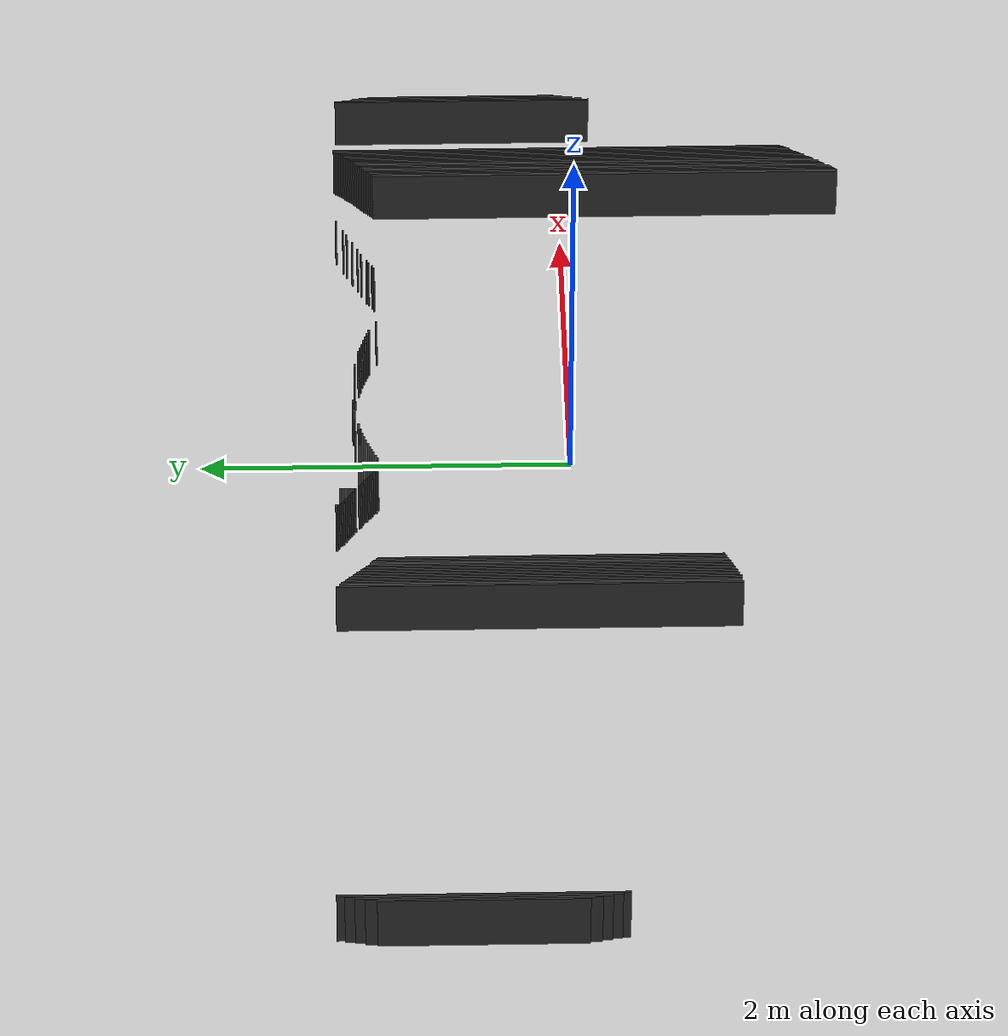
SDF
<sdf version="1.7">
 <world name="mapa_mundo">
  <model name="ground_plane">
   <static>true</static>
   <link name="link">
    <collision name="collision">
     <geometry><plane><normal>0 0 1</normal><size>10 10</size></plane></geometry>
     <surface><friction><ode><mu>100</mu><mu2>50</mu2></ode></friction></surface>
    </collision>
    <visual name="visual">
     <geometry><plane><normal>0 0 1</normal><size>10 10</size></plane></geometry>
     <material>
      <ambient>0.8 0.8 0.8 1</ambient>
      <diffuse>0.8 0.8 0.8 1</diffuse>
      <specular>0.8 0.8 0.8 1</specular>
     </material>
    </visual>
   </link>
  </model>
  <model name="wall_600">
   <static>true</static>
   <link name="link">
    <collision name="collision">
     <geometry><box><size>0.01 2.5500000000000003 0.3</size></box></geometry>
    </collision>
    <visual name="visual">
     <geometry><box><size>0.01 2.5500000000000003 0.3</size></box></geometry>
     <material><ambient>0.2 0.2 0.2 1</ambient><diffuse>0.2 0.2 0.2 1</diffuse></material>
    </visual>
    <pose>2.515 0.005 0.15 0 0 0</pose>
   </link>
  </model>
  <model name="wall_601">
   <static>true</static>
   <link name="link">
    <collision name="collision"><geometry><box><size>0.01 1.45 0.3</size></box></geometry></collision>
    <visual name="visual">
     <geometry><box><size>0.01 1.45 0.3</size></box></geometry>
     <material><ambient>0.2 0.2 0.2 1</ambient><diffuse>0.2 0.2 0.2 1</diffuse></material>
    </visual>
    <pose>-3.735 0.545 0.15 0 0 0</pose>
   </link>
  </model>
  <model name="wall_602">
   <static>true</static>
   <link name="link">
    <collision name="collision"><geometry><box><size>0.01 2.13 0.3</size></box></geometry></collision>
    <visual name="visual">
     <geometry><box><size>0.01 2.13 0.3</size></box></geometry>
     <material><ambient>0.2 0.2 0.2 1</ambient><diffuse>0.2 0.2 0.2 1</diffuse></material>
    </visual>
    <pose>-1.365 0.20500000000000002 0.15 0 0 0</pose>
   </link>
  </model>
  <model name="wall_603">
   <static>true</static>
   <link name="link">
    <collision name="collision"><geometry><box><size>0.02 0.01 0.3</size></box></geometry></collision>
    <visual name="visual">
     <geometry><box><size>0.02 0.01 0.3</size></box></geometry>
     <material><ambient>0.2 0.2 0.2 1</ambient><diffuse>0.2 0.2 0.2 1</diffuse></material>
    </visual>
    <pose>-0.7000000000000001 1.2650000000000001 0.15 0 0 0</pose>
   </link>
  </model>
  <model name="wall_604">
   <static>true</static>
   <link name="link">
    <collision name="collision"><geometry><box><size>0.01 0.01 0.3</size></box></geometry></collision>
    <visual name="visual">
     <geometry><box><size>0.01 0.01 0.3</size></box></geometry>
     <material><ambient>0.2 0.2 0.2 1</ambient><diffuse>0.2 0.2 0.2 1</diffuse></material>
    </visual>
    <pose>1.835 1.2650000000000001 0.15 0 0 0</pose>
   </link>
  </model>
  <model name="wall_605">
   <static>true</static>
   <link name="link">
    <collision name="collision"><geometry><box><size>0.01 2.56 0.3</size></box></geometry></collision>
    <visual name="visual">
     <geometry><box><size>0.01 2.56 0.3</size></box></geometry>
     <material><ambient>0.2 0.2 0.2 1</ambient><diffuse>0.2 0.2 0.2 1</diffuse></material>
    </visual>
    <pose>2.505 -0.01 0.15 0 0 0</pose>
   </link>
  </model>
  <model name="wall_606">
   <static>true</static>
   <link name="link">
    <collision name="collision"><geometry><box><size>0.01 1.46 0.3</size></box></geometry></collision>
    <visual name="visual">
     <geometry><box><size>0.01 1.46 0.3</size></box></geometry>
     <material><ambient>0.2 0.2 0.2 1</ambient><diffuse>0.2 0.2 0.2 1</diffuse></material>
    </visual>
    <pose>2.995 0.54 0.15 0 0 0</pose>
   </link>
  </model>
  <model name="wall_607">
   <static>true</static>
   <link name="link">
    <collision name="collision"><geometry><box><size>0.01 0.01 0.3</size></box></geometry></collision>
    <visual name="visual">
     <geometry><box><size>0.01 0.01 0.3</size></box></geometry>
     <material><ambient>0.2 0.2 0.2 1</ambient><diffuse>0.2 0.2 0.2 1</diffuse></material>
    </visual>
    <pose>-0.6950000000000001 1.2550000000000001 0.15 0 0 0</pose>
   </link>
  </model>
  <model name="wall_608">
   <static>true</static>
   <link name="link">
    <collision name="collision"><geometry><box><size>0.01 2.56 0.3</size></box></geometry></collision>
    <visual name="visual">
     <geometry><box><size>0.01 2.56 0.3</size></box></geometry>
     <material><ambient>0.2 0.2 0.2 1</ambient><diffuse>0.2 0.2 0.2 1</diffuse></material>
    </visual>
    <pose>2.495 -0.02 0.15 0 0 0</pose>
   </link>
  </model>
  <model name="wall_609">
   <static>true</static>
   <link name="link">
    <collision name="collision"><geometry><box><size>0.02 2.1 0.3</size></box></geometry></collision>
    <visual name="visual">
     <geometry><box><size>0.02 2.1 0.3</size></box></geometry>
     <material><ambient>0.2 0.2 0.2 1</ambient><diffuse>0.2 0.2 0.2 1</diffuse></material>
    </visual>
    <pose>-1.35 0.2 0.15 0 0 0</pose>
   </link>
  </model>
  <model name="wall_610">
   <static>true</static>
   <link name="link">
    <collision name="collision"><geometry><box><size>0.13 0.01 0.3</size></box></geometry></collision>
    <visual name="visual">
     <geometry><box><size>0.13 0.01 0.3</size></box></geometry>
     <material><ambient>0.2 0.2 0.2 1</ambient><diffuse>0.2 0.2 0.2 1</diffuse></material>
    </visual>
    <pose>-0.615 1.245 0.15 0 0 0</pose>
   </link>
  </model>
  <model name="wall_611">
   <static>true</static>
   <link name="link">
    <collision name="collision"><geometry><box><size>0.01 2.57 0.3</size></box></geometry></collision>
    <visual name="visual">
     <geometry><box><size>0.01 2.57 0.3</size></box></geometry>
     <material><ambient>0.2 0.2 0.2 1</ambient><diffuse>0.2 0.2 0.2 1</diffuse></material>
    </visual>
    <pose>2.485 -0.035 0.15 0 0 0</pose>
   </link>
  </model>
  <model name="wall_612">
   <static>true</static>
   <link name="link">
    <collision name="collision"><geometry><box><size>0.01 2.09 0.3</size></box></geometry></collision>
    <visual name="visual">
     <geometry><box><size>0.01 2.09 0.3</size></box></geometry>
     <material><ambient>0.2 0.2 0.2 1</ambient><diffuse>0.2 0.2 0.2 1</diffuse></material>
    </visual>
    <pose>-1.335 0.195 0.15 0 0 0</pose>
   </link>
  </model>
  <model name="wall_613">
   <static>true</static>
   <link name="link">
    <collision name="collision"><geometry><box><size>0.12 0.01 0.3</size></box></geometry></collision>
    <visual name="visual">
     <geometry><box><size>0.12 0.01 0.3</size></box></geometry>
     <material><ambient>0.2 0.2 0.2 1</ambient><diffuse>0.2 0.2 0.2 1</diffuse></material>
    </visual>
    <pose>-0.61 1.235 0.15 0 0 0</pose>
   </link>
  </model>
  <model name="wall_614">
   <static>true</static>
   <link name="link">
    <collision name="collision"><geometry><box><size>0.01 2.57 0.3</size></box></geometry></collision>
    <visual name="visual">
     <geometry><box><size>0.01 2.57 0.3</size></box></geometry>
     <material><ambient>0.2 0.2 0.2 1</ambient><diffuse>0.2 0.2 0.2 1</diffuse></material>
    </visual>
    <pose>2.475 -0.045 0.15 0 0 0</pose>
   </link>
  </model>
  <model name="wall_615">
   <static>true</static>
   <link name="link">
    <collision name="collision"><geometry><box><size>0.01 1.37 0.3</size></box></geometry></collision>
    <visual name="visual">
     <geometry><box><size>0.01 1.37 0.3</size></box></geometry>
     <material><ambient>0.2 0.2 0.2 1</ambient><diffuse>0.2 0.2 0.2 1</diffuse></material>
    </visual>
    <pose>-3.745 0.545 0.15 0 0 0</pose>
   </link>
  </model>
  <model name="wall_616">
   <static>true</static>
   <link name="link">
    <collision name="collision"><geometry><box><size>0.01 2.08 0.3</size></box></geometry></collision>
    <visual name="visual">
     <geometry><box><size>0.01 2.08 0.3</size></box></geometry>
     <material><ambient>0.2 0.2 0.2 1</ambient><diffuse>0.2 0.2 0.2 1</diffuse></material>
    </visual>
    <pose>-1.325 0.19 0.15 0 0 0</pose>
   </link>
  </model>
  <model name="wall_617">
   <static>true</static>
   <link name="link">
    <collision name="collision"><geometry><box><size>0.11 0.01 0.3</size></box></geometry></collision>
    <visual name="visual">
     <geometry><box><size>0.11 0.01 0.3</size></box></geometry>
     <material><ambient>0.2 0.2 0.2 1</ambient><diffuse>0.2 0.2 0.2 1</diffuse></material>
    </visual>
    <pose>-0.605 1.225 0.15 0 0 0</pose>
   </link>
  </model>
  <model name="wall_618">
   <static>true</static>
   <link name="link">
    <collision name="collision"><geometry><box><size>0.01 0.01 0.3</size></box></geometry></collision>
    <visual name="visual">
     <geometry><box><size>0.01 0.01 0.3</size></box></geometry>
     <material><ambient>0.2 0.2 0.2 1</ambient><diffuse>0.2 0.2 0.2 1</diffuse></material>
    </visual>
    <pose>1.745 1.225 0.15 0 0 0</pose>
   </link>
  </model>
  <model name="wall_619">
   <static>true</static>
   <link name="link">
    <collision name="collision"><geometry><box><size>0.01 2.57 0.3</size></box></geometry></collision>
    <visual name="visual">
     <geometry><box><size>0.01 2.57 0.3</size></box></geometry>
     <material><ambient>0.2 0.2 0.2 1</ambient><diffuse>0.2 0.2 0.2 1</diffuse></material>
    </visual>
    <pose>2.465 -0.055 0.15 0 0 0</pose>
   </link>
  </model>
  <model name="wall_620">
   <static>true</static>
   <link name="link">
    <collision name="collision">
     <geometry><box><size>0.01 1.3800000000000001 0.3</size></box></geometry>
    </collision>
    <visual name="visual">
     <geometry><box><size>0.01 1.3800000000000001 0.3</size></box></geometry>
     <material><ambient>0.2 0.2 0.2 1</ambient><diffuse>0.2 0.2 0.2 1</diffuse></material>
    </visual>
    <pose>3.005 0.54 0.15 0 0 0</pose>
   </link>
  </model>
  <model name="wall_621">
   <static>true</static>
   <link name="link">
    <collision name="collision"><geometry><box><size>0.01 2.07 0.3</size></box></geometry></collision>
    <visual name="visual">
     <geometry><box><size>0.01 2.07 0.3</size></box></geometry>
     <material><ambient>0.2 0.2 0.2 1</ambient><diffuse>0.2 0.2 0.2 1</diffuse></material>
    </visual>
    <pose>-1.315 0.185 0.15 0 0 0</pose>
   </link>
  </model>
  <model name="wall_622">
   <static>true</static>
   <link name="link">
    <collision name="collision"><geometry><box><size>0.09 0.01 0.3</size></box></geometry></collision>
    <visual name="visual">
     <geometry><box><size>0.09 0.01 0.3</size></box></geometry>
     <material><ambient>0.2 0.2 0.2 1</ambient><diffuse>0.2 0.2 0.2 1</diffuse></material>
    </visual>
    <pose>-0.595 1.215 0.15 0 0 0</pose>
   </link>
  </model>
  <model name="wall_623">
   <static>true</static>
   <link name="link">
    <collision name="collision"><geometry><box><size>0.01 2.58 0.3</size></box></geometry></collision>
    <visual name="visual">
     <geometry><box><size>0.01 2.58 0.3</size></box></geometry>
     <material><ambient>0.2 0.2 0.2 1</ambient><diffuse>0.2 0.2 0.2 1</diffuse></material>
    </visual>
    <pose>2.455 -0.07 0.15 0 0 0</pose>
   </link>
  </model>
  <model name="wall_624">
   <static>true</static>
   <link name="link">
    <collision name="collision"><geometry><box><size>0.01 2.05 0.3</size></box></geometry></collision>
    <visual name="visual">
     <geometry><box><size>0.01 2.05 0.3</size></box></geometry>
     <material><ambient>0.2 0.2 0.2 1</ambient><diffuse>0.2 0.2 0.2 1</diffuse></material>
    </visual>
    <pose>-1.305 0.185 0.15 0 0 0</pose>
   </link>
  </model>
  <model name="wall_625">
   <static>true</static>
   <link name="link">
    <collision name="collision"><geometry><box><size>0.07 0.01 0.3</size></box></geometry></collision>
    <visual name="visual">
     <geometry><box><size>0.07 0.01 0.3</size></box></geometry>
     <material><ambient>0.2 0.2 0.2 1</ambient><diffuse>0.2 0.2 0.2 1</diffuse></material>
    </visual>
    <pose>-0.585 1.205 0.15 0 0 0</pose>
   </link>
  </model>
  <model name="wall_626">
   <static>true</static>
   <link name="link">
    <collision name="collision"><geometry><box><size>0.01 0.01 0.3</size></box></geometry></collision>
    <visual name="visual">
     <geometry><box><size>0.01 0.01 0.3</size></box></geometry>
     <material><ambient>0.2 0.2 0.2 1</ambient><diffuse>0.2 0.2 0.2 1</diffuse></material>
    </visual>
    <pose>1.705 1.205 0.15 0 0 0</pose>
   </link>
  </model>
  <model name="wall_627">
   <static>true</static>
   <link name="link">
    <collision name="collision"><geometry><box><size>0.01 2.58 0.3</size></box></geometry></collision>
    <visual name="visual">
     <geometry><box><size>0.01 2.58 0.3</size></box></geometry>
     <material><ambient>0.2 0.2 0.2 1</ambient><diffuse>0.2 0.2 0.2 1</diffuse></material>
    </visual>
    <pose>2.445 -0.08 0.15 0 0 0</pose>
   </link>
  </model>
  <model name="wall_628">
   <static>true</static>
   <link name="link">
    <collision name="collision"><geometry><box><size>0.01 2.04 0.3</size></box></geometry></collision>
    <visual name="visual">
     <geometry><box><size>0.01 2.04 0.3</size></box></geometry>
     <material><ambient>0.2 0.2 0.2 1</ambient><diffuse>0.2 0.2 0.2 1</diffuse></material>
    </visual>
    <pose>-1.295 0.18 0.15 0 0 0</pose>
   </link>
  </model>
  <model name="wall_629">
   <static>true</static>
   <link name="link">
    <collision name="collision"><geometry><box><size>0.06 0.01 0.3</size></box></geometry></collision>
    <visual name="visual">
     <geometry><box><size>0.06 0.01 0.3</size></box></geometry>
     <material><ambient>0.2 0.2 0.2 1</ambient><diffuse>0.2 0.2 0.2 1</diffuse></material>
    </visual>
    <pose>-0.58 1.195 0.15 0 0 0</pose>
   </link>
  </model>
  <model name="wall_630">
   <static>true</static>
   <link name="link">
    <collision name="collision"><geometry><box><size>0.01 2.58 0.3</size></box></geometry></collision>
    <visual name="visual">
     <geometry><box><size>0.01 2.58 0.3</size></box></geometry>
     <material><ambient>0.2 0.2 0.2 1</ambient><diffuse>0.2 0.2 0.2 1</diffuse></material>
    </visual>
    <pose>2.435 -0.09 0.15 0 0 0</pose>
   </link>
  </model>
  <model name="wall_631">
   <static>true</static>
   <link name="link">
    <collision name="collision"><geometry><box><size>0.01 2.02 0.3</size></box></geometry></collision>
    <visual name="visual">
     <geometry><box><size>0.01 2.02 0.3</size></box></geometry>
     <material><ambient>0.2 0.2 0.2 1</ambient><diffuse>0.2 0.2 0.2 1</diffuse></material>
    </visual>
    <pose>-1.285 0.18 0.15 0 0 0</pose>
   </link>
  </model>
  <model name="wall_632">
   <static>true</static>
   <link name="link">
    <collision name="collision"><geometry><box><size>0.04 0.01 0.3</size></box></geometry></collision>
    <visual name="visual">
     <geometry><box><size>0.04 0.01 0.3</size></box></geometry>
     <material><ambient>0.2 0.2 0.2 1</ambient><diffuse>0.2 0.2 0.2 1</diffuse></material>
    </visual>
    <pose>-0.5700000000000001 1.185 0.15 0 0 0</pose>
   </link>
  </model>
  <model name="wall_633">
   <static>true</static>
   <link name="link">
    <collision name="collision"><geometry><box><size>0.01 2.59 0.3</size></box></geometry></collision>
    <visual name="visual">
     <geometry><box><size>0.01 2.59 0.3</size></box></geometry>
     <material><ambient>0.2 0.2 0.2 1</ambient><diffuse>0.2 0.2 0.2 1</diffuse></material>
    </visual>
    <pose>2.4250000000000003 -0.105 0.15 0 0 0</pose>
   </link>
  </model>
  <model name="wall_634">
   <static>true</static>
   <link name="link">
    <collision name="collision"><geometry><box><size>0.01 1.27 0.3</size></box></geometry></collision>
    <visual name="visual">
     <geometry><box><size>0.01 1.27 0.3</size></box></geometry>
     <material><ambient>0.2 0.2 0.2 1</ambient><diffuse>0.2 0.2 0.2 1</diffuse></material>
    </visual>
    <pose>-3.755 0.545 0.15 0 0 0</pose>
   </link>
  </model>
  <model name="wall_635">
   <static>true</static>
   <link name="link">
    <collision name="collision">
     <geometry><box><size>0.01 2.0100000000000002 0.3</size></box></geometry>
    </collision>
    <visual name="visual">
     <geometry><box><size>0.01 2.0100000000000002 0.3</size></box></geometry>
     <material><ambient>0.2 0.2 0.2 1</ambient><diffuse>0.2 0.2 0.2 1</diffuse></material>
    </visual>
    <pose>-1.2750000000000001 0.17500000000000002 0.15 0 0 0</pose>
   </link>
  </model>
  <model name="wall_636">
   <static>true</static>
   <link name="link">
    <collision name="collision"><geometry><box><size>0.03 0.01 0.3</size></box></geometry></collision>
    <visual name="visual">
     <geometry><box><size>0.03 0.01 0.3</size></box></geometry>
     <material><ambient>0.2 0.2 0.2 1</ambient><diffuse>0.2 0.2 0.2 1</diffuse></material>
    </visual>
    <pose>-0.5650000000000001 1.175 0.15 0 0 0</pose>
   </link>
  </model>
  <model name="wall_637">
   <static>true</static>
   <link name="link">
    <collision name="collision"><geometry><box><size>0.02 0.01 0.3</size></box></geometry></collision>
    <visual name="visual">
     <geometry><box><size>0.02 0.01 0.3</size></box></geometry>
     <material><ambient>0.2 0.2 0.2 1</ambient><diffuse>0.2 0.2 0.2 1</diffuse></material>
    </visual>
    <pose>0.2 1.175 0.15 0 0 0</pose>
   </link>
  </model>
  <model name="wall_638">
   <static>true</static>
   <link name="link">
    <collision name="collision"><geometry><box><size>0.01 0.01 0.3</size></box></geometry></collision>
    <visual name="visual">
     <geometry><box><size>0.01 0.01 0.3</size></box></geometry>
     <material><ambient>0.2 0.2 0.2 1</ambient><diffuse>0.2 0.2 0.2 1</diffuse></material>
    </visual>
    <pose>1.635 1.175 0.15 0 0 0</pose>
   </link>
  </model>
  <model name="wall_639">
   <static>true</static>
   <link name="link">
    <collision name="collision"><geometry><box><size>0.01 2.59 0.3</size></box></geometry></collision>
    <visual name="visual">
     <geometry><box><size>0.01 2.59 0.3</size></box></geometry>
     <material><ambient>0.2 0.2 0.2 1</ambient><diffuse>0.2 0.2 0.2 1</diffuse></material>
    </visual>
    <pose>2.415 -0.115 0.15 0 0 0</pose>
   </link>
  </model>
  <model name="wall_640">
   <static>true</static>
   <link name="link">
    <collision name="collision"><geometry><box><size>0.01 1.28 0.3</size></box></geometry></collision>
    <visual name="visual">
     <geometry><box><size>0.01 1.28 0.3</size></box></geometry>
     <material><ambient>0.2 0.2 0.2 1</ambient><diffuse>0.2 0.2 0.2 1</diffuse></material>
    </visual>
    <pose>3.015 0.54 0.15 0 0 0</pose>
   </link>
  </model>
  <model name="wall_641">
   <static>true</static>
   <link name="link">
    <collision name="collision"><geometry><box><size>0.01 2.0 0.3</size></box></geometry></collision>
    <visual name="visual">
     <geometry><box><size>0.01 2.0 0.3</size></box></geometry>
     <material><ambient>0.2 0.2 0.2 1</ambient><diffuse>0.2 0.2 0.2 1</diffuse></material>
    </visual>
    <pose>-1.2650000000000001 0.17 0.15 0 0 0</pose>
   </link>
  </model>
  <model name="wall_642">
   <static>true</static>
   <link name="link">
    <collision name="collision"><geometry><box><size>0.01 0.01 0.3</size></box></geometry></collision>
    <visual name="visual">
     <geometry><box><size>0.01 0.01 0.3</size></box></geometry>
     <material><ambient>0.2 0.2 0.2 1</ambient><diffuse>0.2 0.2 0.2 1</diffuse></material>
    </visual>
    <pose>-0.555 1.165 0.15 0 0 0</pose>
   </link>
  </model>
  <model name="wall_643">
   <static>true</static>
   <link name="link">
    <collision name="collision"><geometry><box><size>0.07 0.01 0.3</size></box></geometry></collision>
    <visual name="visual">
     <geometry><box><size>0.07 0.01 0.3</size></box></geometry>
     <material><ambient>0.2 0.2 0.2 1</ambient><diffuse>0.2 0.2 0.2 1</diffuse></material>
    </visual>
    <pose>0.075 1.165 0.15 0 0 0</pose>
   </link>
  </model>
  <model name="wall_644">
   <static>true</static>
   <link name="link">
    <collision name="collision"><geometry><box><size>0.03 0.01 0.3</size></box></geometry></collision>
    <visual name="visual">
     <geometry><box><size>0.03 0.01 0.3</size></box></geometry>
     <material><ambient>0.2 0.2 0.2 1</ambient><diffuse>0.2 0.2 0.2 1</diffuse></material>
    </visual>
    <pose>0.515 1.165 0.15 0 0 0</pose>
   </link>
  </model>
  <model name="wall_645">
   <static>true</static>
   <link name="link">
    <collision name="collision"><geometry><box><size>0.01 2.6 0.3</size></box></geometry></collision>
    <visual name="visual">
     <geometry><box><size>0.01 2.6 0.3</size></box></geometry>
     <material><ambient>0.2 0.2 0.2 1</ambient><diffuse>0.2 0.2 0.2 1</diffuse></material>
    </visual>
    <pose>2.4050000000000002 -0.13 0.15 0 0 0</pose>
   </link>
  </model>
  <model name="wall_646">
   <static>true</static>
   <link name="link">
    <collision name="collision"><geometry><box><size>0.01 1.98 0.3</size></box></geometry></collision>
    <visual name="visual">
     <geometry><box><size>0.01 1.98 0.3</size></box></geometry>
     <material><ambient>0.2 0.2 0.2 1</ambient><diffuse>0.2 0.2 0.2 1</diffuse></material>
    </visual>
    <pose>-1.2550000000000001 0.17 0.15 0 0 0</pose>
   </link>
  </model>
  <model name="wall_647">
   <static>true</static>
   <link name="link">
    <collision name="collision"><geometry><box><size>0.01 2.6 0.3</size></box></geometry></collision>
    <visual name="visual">
     <geometry><box><size>0.01 2.6 0.3</size></box></geometry>
     <material><ambient>0.2 0.2 0.2 1</ambient><diffuse>0.2 0.2 0.2 1</diffuse></material>
    </visual>
    <pose>2.395 -0.14 0.15 0 0 0</pose>
   </link>
  </model>
  <model name="wall_648">
   <static>true</static>
   <link name="link">
    <collision name="collision"><geometry><box><size>0.01 1.97 0.3</size></box></geometry></collision>
    <visual name="visual">
     <geometry><box><size>0.01 1.97 0.3</size></box></geometry>
     <material><ambient>0.2 0.2 0.2 1</ambient><diffuse>0.2 0.2 0.2 1</diffuse></material>
    </visual>
    <pose>-1.245 0.165 0.15 0 0 0</pose>
   </link>
  </model>
  <model name="wall_649">
   <static>true</static>
   <link name="link">
    <collision name="collision">
     <geometry><box><size>0.35000000000000003 0.01 0.3</size></box></geometry>
    </collision>
    <visual name="visual">
     <geometry><box><size>0.35000000000000003 0.01 0.3</size></box></geometry>
     <material><ambient>0.2 0.2 0.2 1</ambient><diffuse>0.2 0.2 0.2 1</diffuse></material>
    </visual>
    <pose>-0.355 1.145 0.15 0 0 0</pose>
   </link>
  </model>
  <model name="wall_650">
   <static>true</static>
   <link name="link">
    <collision name="collision"><geometry><box><size>0.05 0.01 0.3</size></box></geometry></collision>
    <visual name="visual">
     <geometry><box><size>0.05 0.01 0.3</size></box></geometry>
     <material><ambient>0.2 0.2 0.2 1</ambient><diffuse>0.2 0.2 0.2 1</diffuse></material>
    </visual>
    <pose>-0.025 1.145 0.15 0 0 0</pose>
   </link>
  </model>
  <model name="wall_651">
   <static>true</static>
   <link name="link">
    <collision name="collision"><geometry><box><size>0.03 0.01 0.3</size></box></geometry></collision>
    <visual name="visual">
     <geometry><box><size>0.03 0.01 0.3</size></box></geometry>
     <material><ambient>0.2 0.2 0.2 1</ambient><diffuse>0.2 0.2 0.2 1</diffuse></material>
    </visual>
    <pose>0.625 1.145 0.15 0 0 0</pose>
   </link>
  </model>
  <model name="wall_652">
   <static>true</static>
   <link name="link">
    <collision name="collision"><geometry><box><size>0.01 0.01 0.3</size></box></geometry></collision>
    <visual name="visual">
     <geometry><box><size>0.01 0.01 0.3</size></box></geometry>
     <material><ambient>0.2 0.2 0.2 1</ambient><diffuse>0.2 0.2 0.2 1</diffuse></material>
    </visual>
    <pose>1.575 1.145 0.15 0 0 0</pose>
   </link>
  </model>
  <model name="wall_653">
   <static>true</static>
   <link name="link">
    <collision name="collision"><geometry><box><size>0.02 2.6 0.3</size></box></geometry></collision>
    <visual name="visual">
     <geometry><box><size>0.02 2.6 0.3</size></box></geometry>
     <material><ambient>0.2 0.2 0.2 1</ambient><diffuse>0.2 0.2 0.2 1</diffuse></material>
    </visual>
    <pose>2.38 -0.15 0.15 0 0 0</pose>
   </link>
  </model>
  <model name="wall_654">
   <static>true</static>
   <link name="link">
    <collision name="collision"><geometry><box><size>0.01 1.95 0.3</size></box></geometry></collision>
    <visual name="visual">
     <geometry><box><size>0.01 1.95 0.3</size></box></geometry>
     <material><ambient>0.2 0.2 0.2 1</ambient><diffuse>0.2 0.2 0.2 1</diffuse></material>
    </visual>
    <pose>-1.235 0.165 0.15 0 0 0</pose>
   </link>
  </model>
  <model name="wall_655">
   <static>true</static>
   <link name="link">
    <collision name="collision"><geometry><box><size>0.34 0.01 0.3</size></box></geometry></collision>
    <visual name="visual">
     <geometry><box><size>0.34 0.01 0.3</size></box></geometry>
     <material><ambient>0.2 0.2 0.2 1</ambient><diffuse>0.2 0.2 0.2 1</diffuse></material>
    </visual>
    <pose>-0.35000000000000003 1.135 0.15 0 0 0</pose>
   </link>
  </model>
  <model name="wall_656">
   <static>true</static>
   <link name="link">
    <collision name="collision"><geometry><box><size>0.01 0.01 0.3</size></box></geometry></collision>
    <visual name="visual">
     <geometry><box><size>0.01 0.01 0.3</size></box></geometry>
     <material><ambient>0.2 0.2 0.2 1</ambient><diffuse>0.2 0.2 0.2 1</diffuse></material>
    </visual>
    <pose>-0.045 1.135 0.15 0 0 0</pose>
   </link>
  </model>
  <model name="wall_657">
   <static>true</static>
   <link name="link">
    <collision name="collision"><geometry><box><size>0.02 0.01 0.3</size></box></geometry></collision>
    <visual name="visual">
     <geometry><box><size>0.02 0.01 0.3</size></box></geometry>
     <material><ambient>0.2 0.2 0.2 1</ambient><diffuse>0.2 0.2 0.2 1</diffuse></material>
    </visual>
    <pose>0.66 1.135 0.15 0 0 0</pose>
   </link>
  </model>
  <model name="wall_658">
   <static>true</static>
   <link name="link">
    <collision name="collision"><geometry><box><size>0.01 2.62 0.3</size></box></geometry></collision>
    <visual name="visual">
     <geometry><box><size>0.01 2.62 0.3</size></box></geometry>
     <material><ambient>0.2 0.2 0.2 1</ambient><diffuse>0.2 0.2 0.2 1</diffuse></material>
    </visual>
    <pose>2.365 -0.17 0.15 0 0 0</pose>
   </link>
  </model>
  <model name="wall_659">
   <static>true</static>
   <link name="link">
    <collision name="collision"><geometry><box><size>0.01 1.17 0.3</size></box></geometry></collision>
    <visual name="visual">
     <geometry><box><size>0.01 1.17 0.3</size></box></geometry>
     <material><ambient>0.2 0.2 0.2 1</ambient><diffuse>0.2 0.2 0.2 1</diffuse></material>
    </visual>
    <pose>-3.765 0.545 0.15 0 0 0</pose>
   </link>
  </model>
  <model name="wall_660">
   <static>true</static>
   <link name="link">
    <collision name="collision"><geometry><box><size>0.01 1.94 0.3</size></box></geometry></collision>
    <visual name="visual">
     <geometry><box><size>0.01 1.94 0.3</size></box></geometry>
     <material><ambient>0.2 0.2 0.2 1</ambient><diffuse>0.2 0.2 0.2 1</diffuse></material>
    </visual>
    <pose>-1.225 0.16 0.15 0 0 0</pose>
   </link>
  </model>
  <model name="wall_661">
   <static>true</static>
   <link name="link">
    <collision name="collision"><geometry><box><size>0.42 0.01 0.3</size></box></geometry></collision>
    <visual name="visual">
     <geometry><box><size>0.42 0.01 0.3</size></box></geometry>
     <material><ambient>0.2 0.2 0.2 1</ambient><diffuse>0.2 0.2 0.2 1</diffuse></material>
    </visual>
    <pose>-0.29 1.125 0.15 0 0 0</pose>
   </link>
  </model>
  <model name="wall_662">
   <static>true</static>
   <link name="link">
    <collision name="collision"><geometry><box><size>0.01 0.01 0.3</size></box></geometry></collision>
    <visual name="visual">
     <geometry><box><size>0.01 0.01 0.3</size></box></geometry>
     <material><ambient>0.2 0.2 0.2 1</ambient><diffuse>0.2 0.2 0.2 1</diffuse></material>
    </visual>
    <pose>0.6950000000000001 1.125 0.15 0 0 0</pose>
   </link>
  </model>
  <model name="wall_663">
   <static>true</static>
   <link name="link">
    <collision name="collision"><geometry><box><size>0.01 0.01 0.3</size></box></geometry></collision>
    <visual name="visual">
     <geometry><box><size>0.01 0.01 0.3</size></box></geometry>
     <material><ambient>0.2 0.2 0.2 1</ambient><diffuse>0.2 0.2 0.2 1</diffuse></material>
    </visual>
    <pose>1.5250000000000001 1.125 0.15 0 0 0</pose>
   </link>
  </model>
  <model name="wall_664">
   <static>true</static>
   <link name="link">
    <collision name="collision"><geometry><box><size>0.01 2.62 0.3</size></box></geometry></collision>
    <visual name="visual">
     <geometry><box><size>0.01 2.62 0.3</size></box></geometry>
     <material><ambient>0.2 0.2 0.2 1</ambient><diffuse>0.2 0.2 0.2 1</diffuse></material>
    </visual>
    <pose>2.355 -0.18 0.15 0 0 0</pose>
   </link>
  </model>
  <model name="wall_665">
   <static>true</static>
   <link name="link">
    <collision name="collision"><geometry><box><size>0.01 1.17 0.3</size></box></geometry></collision>
    <visual name="visual">
     <geometry><box><size>0.01 1.17 0.3</size></box></geometry>
     <material><ambient>0.2 0.2 0.2 1</ambient><diffuse>0.2 0.2 0.2 1</diffuse></material>
    </visual>
    <pose>3.025 0.545 0.15 0 0 0</pose>
   </link>
  </model>
  <model name="wall_666">
   <static>true</static>
   <link name="link">
    <collision name="collision"><geometry><box><size>0.01 1.93 0.3</size></box></geometry></collision>
    <visual name="visual">
     <geometry><box><size>0.01 1.93 0.3</size></box></geometry>
     <material><ambient>0.2 0.2 0.2 1</ambient><diffuse>0.2 0.2 0.2 1</diffuse></material>
    </visual>
    <pose>-1.215 0.155 0.15 0 0 0</pose>
   </link>
  </model>
  <model name="wall_667">
   <static>true</static>
   <link name="link">
    <collision name="collision"><geometry><box><size>0.37 0.01 0.3</size></box></geometry></collision>
    <visual name="visual">
     <geometry><box><size>0.37 0.01 0.3</size></box></geometry>
     <material><ambient>0.2 0.2 0.2 1</ambient><diffuse>0.2 0.2 0.2 1</diffuse></material>
    </visual>
    <pose>-0.295 1.115 0.15 0 0 0</pose>
   </link>
  </model>
  <model name="wall_668">
   <static>true</static>
   <link name="link">
    <collision name="collision"><geometry><box><size>0.02 0.01 0.3</size></box></geometry></collision>
    <visual name="visual">
     <geometry><box><size>0.02 0.01 0.3</size></box></geometry>
     <material><ambient>0.2 0.2 0.2 1</ambient><diffuse>0.2 0.2 0.2 1</diffuse></material>
    </visual>
    <pose>0.73 1.115 0.15 0 0 0</pose>
   </link>
  </model>
  <model name="wall_669">
   <static>true</static>
   <link name="link">
    <collision name="collision"><geometry><box><size>0.01 2.62 0.3</size></box></geometry></collision>
    <visual name="visual">
     <geometry><box><size>0.01 2.62 0.3</size></box></geometry>
     <material><ambient>0.2 0.2 0.2 1</ambient><diffuse>0.2 0.2 0.2 1</diffuse></material>
    </visual>
    <pose>2.345 -0.19 0.15 0 0 0</pose>
   </link>
  </model>
  <model name="wall_670">
   <static>true</static>
   <link name="link">
    <collision name="collision">
     <geometry><box><size>0.01 1.9100000000000001 0.3</size></box></geometry>
    </collision>
    <visual name="visual">
     <geometry><box><size>0.01 1.9100000000000001 0.3</size></box></geometry>
     <material><ambient>0.2 0.2 0.2 1</ambient><diffuse>0.2 0.2 0.2 1</diffuse></material>
    </visual>
    <pose>-1.205 0.155 0.15 0 0 0</pose>
   </link>
  </model>
  <model name="wall_671">
   <static>true</static>
   <link name="link">
    <collision name="collision"><geometry><box><size>0.33 0.01 0.3</size></box></geometry></collision>
    <visual name="visual">
     <geometry><box><size>0.33 0.01 0.3</size></box></geometry>
     <material><ambient>0.2 0.2 0.2 1</ambient><diffuse>0.2 0.2 0.2 1</diffuse></material>
    </visual>
    <pose>-0.305 1.105 0.15 0 0 0</pose>
   </link>
  </model>
  <model name="wall_672">
   <static>true</static>
   <link name="link">
    <collision name="collision"><geometry><box><size>0.02 0.01 0.3</size></box></geometry></collision>
    <visual name="visual">
     <geometry><box><size>0.02 0.01 0.3</size></box></geometry>
     <material><ambient>0.2 0.2 0.2 1</ambient><diffuse>0.2 0.2 0.2 1</diffuse></material>
    </visual>
    <pose>0.76 1.105 0.15 0 0 0</pose>
   </link>
  </model>
  <model name="wall_673">
   <static>true</static>
   <link name="link">
    <collision name="collision"><geometry><box><size>0.02 2.62 0.3</size></box></geometry></collision>
    <visual name="visual">
     <geometry><box><size>0.02 2.62 0.3</size></box></geometry>
     <material><ambient>0.2 0.2 0.2 1</ambient><diffuse>0.2 0.2 0.2 1</diffuse></material>
    </visual>
    <pose>2.33 -0.2 0.15 0 0 0</pose>
   </link>
  </model>
  <model name="wall_674">
   <static>true</static>
   <link name="link">
    <collision name="collision">
     <geometry><box><size>0.01 1.9000000000000001 0.3</size></box></geometry>
    </collision>
    <visual name="visual">
     <geometry><box><size>0.01 1.9000000000000001 0.3</size></box></geometry>
     <material><ambient>0.2 0.2 0.2 1</ambient><diffuse>0.2 0.2 0.2 1</diffuse></material>
    </visual>
    <pose>-1.195 0.15 0.15 0 0 0</pose>
   </link>
  </model>
  <model name="wall_675">
   <static>true</static>
   <link name="link">
    <collision name="collision"><geometry><box><size>0.28 0.01 0.3</size></box></geometry></collision>
    <visual name="visual">
     <geometry><box><size>0.28 0.01 0.3</size></box></geometry>
     <material><ambient>0.2 0.2 0.2 1</ambient><diffuse>0.2 0.2 0.2 1</diffuse></material>
    </visual>
    <pose>-0.31 1.095 0.15 0 0 0</pose>
   </link>
  </model>
  <model name="wall_676">
   <static>true</static>
   <link name="link">
    <collision name="collision"><geometry><box><size>0.02 0.01 0.3</size></box></geometry></collision>
    <visual name="visual">
     <geometry><box><size>0.02 0.01 0.3</size></box></geometry>
     <material><ambient>0.2 0.2 0.2 1</ambient><diffuse>0.2 0.2 0.2 1</diffuse></material>
    </visual>
    <pose>0.79 1.095 0.15 0 0 0</pose>
   </link>
  </model>
  <model name="wall_677">
   <static>true</static>
   <link name="link">
    <collision name="collision"><geometry><box><size>0.01 0.01 0.3</size></box></geometry></collision>
    <visual name="visual">
     <geometry><box><size>0.01 0.01 0.3</size></box></geometry>
     <material><ambient>0.2 0.2 0.2 1</ambient><diffuse>0.2 0.2 0.2 1</diffuse></material>
    </visual>
    <pose>1.465 1.095 0.15 0 0 0</pose>
   </link>
  </model>
  <model name="wall_678">
   <static>true</static>
   <link name="link">
    <collision name="collision"><geometry><box><size>0.01 2.64 0.3</size></box></geometry></collision>
    <visual name="visual">
     <geometry><box><size>0.01 2.64 0.3</size></box></geometry>
     <material><ambient>0.2 0.2 0.2 1</ambient><diffuse>0.2 0.2 0.2 1</diffuse></material>
    </visual>
    <pose>2.315 -0.22 0.15 0 0 0</pose>
   </link>
  </model>
  <model name="wall_679">
   <static>true</static>
   <link name="link">
    <collision name="collision">
     <geometry><box><size>0.02 1.8800000000000001 0.3</size></box></geometry>
    </collision>
    <visual name="visual">
     <geometry><box><size>0.02 1.8800000000000001 0.3</size></box></geometry>
     <material><ambient>0.2 0.2 0.2 1</ambient><diffuse>0.2 0.2 0.2 1</diffuse></material>
    </visual>
    <pose>-1.18 0.15 0.15 0 0 0</pose>
   </link>
  </model>
  <model name="wall_680">
   <static>true</static>
   <link name="link">
    <collision name="collision"><geometry><box><size>0.24 0.01 0.3</size></box></geometry></collision>
    <visual name="visual">
     <geometry><box><size>0.24 0.01 0.3</size></box></geometry>
     <material><ambient>0.2 0.2 0.2 1</ambient><diffuse>0.2 0.2 0.2 1</diffuse></material>
    </visual>
    <pose>-0.32 1.085 0.15 0 0 0</pose>
   </link>
  </model>
  <model name="wall_681">
   <static>true</static>
   <link name="link">
    <collision name="collision"><geometry><box><size>0.02 0.01 0.3</size></box></geometry></collision>
    <visual name="visual">
     <geometry><box><size>0.02 0.01 0.3</size></box></geometry>
     <material><ambient>0.2 0.2 0.2 1</ambient><diffuse>0.2 0.2 0.2 1</diffuse></material>
    </visual>
    <pose>0.8200000000000001 1.085 0.15 0 0 0</pose>
   </link>
  </model>
  <model name="wall_682">
   <static>true</static>
   <link name="link">
    <collision name="collision"><geometry><box><size>0.01 0.01 0.3</size></box></geometry></collision>
    <visual name="visual">
     <geometry><box><size>0.01 0.01 0.3</size></box></geometry>
     <material><ambient>0.2 0.2 0.2 1</ambient><diffuse>0.2 0.2 0.2 1</diffuse></material>
    </visual>
    <pose>1.445 1.085 0.15 0 0 0</pose>
   </link>
  </model>
  <model name="wall_683">
   <static>true</static>
   <link name="link">
    <collision name="collision"><geometry><box><size>0.01 2.64 0.3</size></box></geometry></collision>
    <visual name="visual">
     <geometry><box><size>0.01 2.64 0.3</size></box></geometry>
     <material><ambient>0.2 0.2 0.2 1</ambient><diffuse>0.2 0.2 0.2 1</diffuse></material>
    </visual>
    <pose>2.305 -0.23 0.15 0 0 0</pose>
   </link>
  </model>
  <model name="wall_684">
   <static>true</static>
   <link name="link">
    <collision name="collision"><geometry><box><size>0.01 1.86 0.3</size></box></geometry></collision>
    <visual name="visual">
     <geometry><box><size>0.01 1.86 0.3</size></box></geometry>
     <material><ambient>0.2 0.2 0.2 1</ambient><diffuse>0.2 0.2 0.2 1</diffuse></material>
    </visual>
    <pose>-1.165 0.15 0.15 0 0 0</pose>
   </link>
  </model>
  <model name="wall_685">
   <static>true</static>
   <link name="link">
    <collision name="collision"><geometry><box><size>0.21 0.01 0.3</size></box></geometry></collision>
    <visual name="visual">
     <geometry><box><size>0.21 0.01 0.3</size></box></geometry>
     <material><ambient>0.2 0.2 0.2 1</ambient><diffuse>0.2 0.2 0.2 1</diffuse></material>
    </visual>
    <pose>-0.325 1.075 0.15 0 0 0</pose>
   </link>
  </model>
  <model name="wall_686">
   <static>true</static>
   <link name="link">
    <collision name="collision"><geometry><box><size>0.01 2.64 0.3</size></box></geometry></collision>
    <visual name="visual">
     <geometry><box><size>0.01 2.64 0.3</size></box></geometry>
     <material><ambient>0.2 0.2 0.2 1</ambient><diffuse>0.2 0.2 0.2 1</diffuse></material>
    </visual>
    <pose>2.295 -0.24 0.15 0 0 0</pose>
   </link>
  </model>
  <model name="wall_687">
   <static>true</static>
   <link name="link">
    <collision name="collision"><geometry><box><size>0.01 1.07 0.3</size></box></geometry></collision>
    <visual name="visual">
     <geometry><box><size>0.01 1.07 0.3</size></box></geometry>
     <material><ambient>0.2 0.2 0.2 1</ambient><diffuse>0.2 0.2 0.2 1</diffuse></material>
    </visual>
    <pose>3.035 0.545 0.15 0 0 0</pose>
   </link>
  </model>
  <model name="wall_688">
   <static>true</static>
   <link name="link">
    <collision name="collision"><geometry><box><size>0.01 1.05 0.3</size></box></geometry></collision>
    <visual name="visual">
     <geometry><box><size>0.01 1.05 0.3</size></box></geometry>
     <material><ambient>0.2 0.2 0.2 1</ambient><diffuse>0.2 0.2 0.2 1</diffuse></material>
    </visual>
    <pose>-3.775 0.545 0.15 0 0 0</pose>
   </link>
  </model>
  <model name="wall_689">
   <static>true</static>
   <link name="link">
    <collision name="collision"><geometry><box><size>0.01 1.85 0.3</size></box></geometry></collision>
    <visual name="visual">
     <geometry><box><size>0.01 1.85 0.3</size></box></geometry>
     <material><ambient>0.2 0.2 0.2 1</ambient><diffuse>0.2 0.2 0.2 1</diffuse></material>
    </visual>
    <pose>-1.155 0.145 0.15 0 0 0</pose>
   </link>
  </model>
  <model name="wall_690">
   <static>true</static>
   <link name="link">
    <collision name="collision"><geometry><box><size>0.17 0.01 0.3</size></box></geometry></collision>
    <visual name="visual">
     <geometry><box><size>0.17 0.01 0.3</size></box></geometry>
     <material><ambient>0.2 0.2 0.2 1</ambient><diffuse>0.2 0.2 0.2 1</diffuse></material>
    </visual>
    <pose>-0.325 1.065 0.15 0 0 0</pose>
   </link>
  </model>
  <model name="wall_691">
   <static>true</static>
   <link name="link">
    <collision name="collision"><geometry><box><size>0.01 0.01 0.3</size></box></geometry></collision>
    <visual name="visual">
     <geometry><box><size>0.01 0.01 0.3</size></box></geometry>
     <material><ambient>0.2 0.2 0.2 1</ambient><diffuse>0.2 0.2 0.2 1</diffuse></material>
    </visual>
    <pose>1.415 1.065 0.15 0 0 0</pose>
   </link>
  </model>
  <model name="wall_692">
   <static>true</static>
   <link name="link">
    <collision name="collision"><geometry><box><size>0.01 2.64 0.3</size></box></geometry></collision>
    <visual name="visual">
     <geometry><box><size>0.01 2.64 0.3</size></box></geometry>
     <material><ambient>0.2 0.2 0.2 1</ambient><diffuse>0.2 0.2 0.2 1</diffuse></material>
    </visual>
    <pose>2.285 -0.25 0.15 0 0 0</pose>
   </link>
  </model>
  <model name="wall_693">
   <static>true</static>
   <link name="link">
    <collision name="collision"><geometry><box><size>0.01 1.83 0.3</size></box></geometry></collision>
    <visual name="visual">
     <geometry><box><size>0.01 1.83 0.3</size></box></geometry>
     <material><ambient>0.2 0.2 0.2 1</ambient><diffuse>0.2 0.2 0.2 1</diffuse></material>
    </visual>
    <pose>-1.145 0.145 0.15 0 0 0</pose>
   </link>
  </model>
  <model name="wall_694">
   <static>true</static>
   <link name="link">
    <collision name="collision"><geometry><box><size>0.13 0.01 0.3</size></box></geometry></collision>
    <visual name="visual">
     <geometry><box><size>0.13 0.01 0.3</size></box></geometry>
     <material><ambient>0.2 0.2 0.2 1</ambient><diffuse>0.2 0.2 0.2 1</diffuse></material>
    </visual>
    <pose>-0.335 1.055 0.15 0 0 0</pose>
   </link>
  </model>
  <model name="wall_695">
   <static>true</static>
   <link name="link">
    <collision name="collision"><geometry><box><size>0.01 0.01 0.3</size></box></geometry></collision>
    <visual name="visual">
     <geometry><box><size>0.01 0.01 0.3</size></box></geometry>
     <material><ambient>0.2 0.2 0.2 1</ambient><diffuse>0.2 0.2 0.2 1</diffuse></material>
    </visual>
    <pose>1.395 1.055 0.15 0 0 0</pose>
   </link>
  </model>
  <model name="wall_696">
   <static>true</static>
   <link name="link">
    <collision name="collision"><geometry><box><size>0.02 2.64 0.3</size></box></geometry></collision>
    <visual name="visual">
     <geometry><box><size>0.02 2.64 0.3</size></box></geometry>
     <material><ambient>0.2 0.2 0.2 1</ambient><diffuse>0.2 0.2 0.2 1</diffuse></material>
    </visual>
    <pose>2.27 -0.26 0.15 0 0 0</pose>
   </link>
  </model>
  <model name="wall_697">
   <static>true</static>
   <link name="link">
    <collision name="collision"><geometry><box><size>0.01 1.82 0.3</size></box></geometry></collision>
    <visual name="visual">
     <geometry><box><size>0.01 1.82 0.3</size></box></geometry>
     <material><ambient>0.2 0.2 0.2 1</ambient><diffuse>0.2 0.2 0.2 1</diffuse></material>
    </visual>
    <pose>-1.135 0.14 0.15 0 0 0</pose>
   </link>
  </model>
  <model name="wall_698">
   <static>true</static>
   <link name="link">
    <collision name="collision"><geometry><box><size>0.09 0.01 0.3</size></box></geometry></collision>
    <visual name="visual">
     <geometry><box><size>0.09 0.01 0.3</size></box></geometry>
     <material><ambient>0.2 0.2 0.2 1</ambient><diffuse>0.2 0.2 0.2 1</diffuse></material>
    </visual>
    <pose>-0.335 1.045 0.15 0 0 0</pose>
   </link>
  </model>
  <model name="wall_699">
   <static>true</static>
   <link name="link">
    <collision name="collision"><geometry><box><size>0.01 0.01 0.3</size></box></geometry></collision>
    <visual name="visual">
     <geometry><box><size>0.01 0.01 0.3</size></box></geometry>
     <material><ambient>0.2 0.2 0.2 1</ambient><diffuse>0.2 0.2 0.2 1</diffuse></material>
    </visual>
    <pose>0.905 1.045 0.15 0 0 0</pose>
   </link>
  </model>
 </world>
</sdf>
